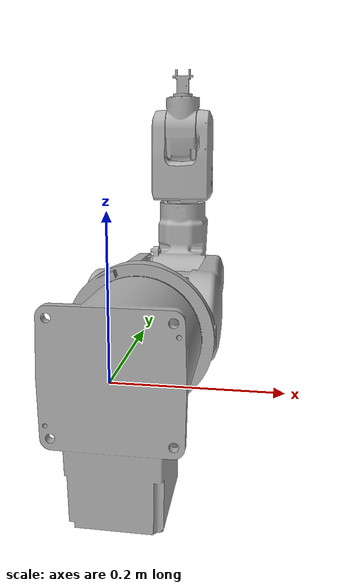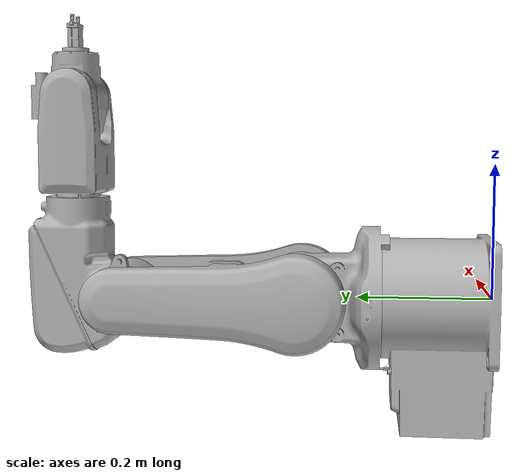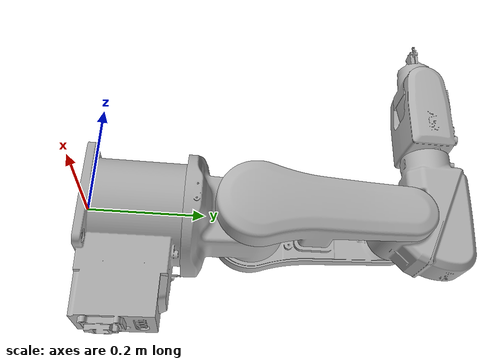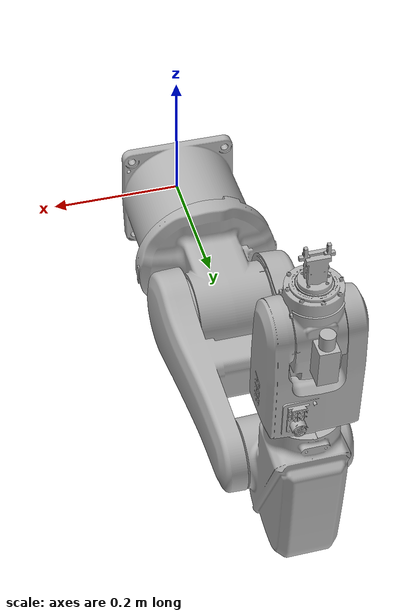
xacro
<?xml version="1.0" ?>
<robot name="abb" xmlns:xacro="http://www.ros.org/wiki/xacro">

<xacro:include filename="materials.xacro" />
<xacro:include filename="abb.trans" />
<xacro:include filename="abb.gazebo" />
<link name="base_link">
  <inertial>
    <origin xyz="8.012829465790817e-05 0.0796373967366606 -0.04203909918692455" rpy="0 0 0"/>
    <mass value="48.78806525610532"/>
    <inertia ixx="0.38566" iyy="0.370816" izz="0.194109" ixy="6.3e-05" iyz="-0.010275" ixz="0.000634"/>
  </inertial>
  <visual>
    <origin xyz="0 0 0" rpy="0 0 0"/>
    <geometry>
      <mesh filename="package://meshes/base_link.stl" scale="0.001 0.001 0.001"/>
    </geometry>
    <material name="silver"/>
  </visual>
  <collision>
    <origin xyz="0 0 0" rpy="0 0 0"/>
    <geometry>
      <mesh filename="package://meshes/base_link.stl" scale="0.001 0.001 0.001"/>
    </geometry>
  </collision>
</link>

<link name="link_one_1">
  <inertial>
    <origin xyz="-0.00011916443999746602 0.07041182603856488 9.765534797940541e-05" rpy="0 0 0"/>
    <mass value="24.076192117313017"/>
    <inertia ixx="0.113074" iyy="0.082059" izz="0.11161" ixy="-0.000152" iyz="0.000182" ixz="0.000101"/>
  </inertial>
  <visual>
    <origin xyz="-0.0 -0.166 -0.0" rpy="0 0 0"/>
    <geometry>
      <mesh filename="package://meshes/link_one_1.stl" scale="0.001 0.001 0.001"/>
    </geometry>
    <material name="silver"/>
  </visual>
  <collision>
    <origin xyz="-0.0 -0.166 -0.0" rpy="0 0 0"/>
    <geometry>
      <mesh filename="package://meshes/link_one_1.stl" scale="0.001 0.001 0.001"/>
    </geometry>
  </collision>
</link>

<link name="link_two_1">
  <inertial>
    <origin xyz="-0.061616888272031205 0.10124228312538341 0.0007963464296757136" rpy="0 0 0"/>
    <mass value="30.683386891011434"/>
    <inertia ixx="0.326327" iyy="0.20375" izz="0.473455" ixy="0.003964" iyz="-0.000476" ixz="-5.8e-05"/>
  </inertial>
  <visual>
    <origin xyz="-0.0595 -0.288 8e-06" rpy="0 0 0"/>
    <geometry>
      <mesh filename="package://meshes/link_two_1.stl" scale="0.001 0.001 0.001"/>
    </geometry>
    <material name="silver"/>
  </visual>
  <collision>
    <origin xyz="-0.0595 -0.288 8e-06" rpy="0 0 0"/>
    <geometry>
      <mesh filename="package://meshes/link_two_1.stl" scale="0.001 0.001 0.001"/>
    </geometry>
  </collision>
</link>

<link name="link_three_1">
  <inertial>
    <origin xyz="0.0510673727268393 0.057896173438662824 0.022837283940879072" rpy="0 0 0"/>
    <mass value="23.108195954813556"/>
    <inertia ixx="0.131196" iyy="0.099697" izz="0.06558" ixy="0.001429" iyz="-0.011195" ixz="0.000621"/>
  </inertial>
  <visual>
    <origin xyz="0.05 -0.558 -3.3e-05" rpy="0 0 0"/>
    <geometry>
      <mesh filename="package://meshes/link_three_1.stl" scale="0.001 0.001 0.001"/>
    </geometry>
    <material name="silver"/>
  </visual>
  <collision>
    <origin xyz="0.05 -0.558 -3.3e-05" rpy="0 0 0"/>
    <geometry>
      <mesh filename="package://meshes/link_three_1.stl" scale="0.001 0.001 0.001"/>
    </geometry>
  </collision>
</link>

<link name="link_four_1">
  <inertial>
    <origin xyz="0.0002437766059516598 0.00035432075163799315 0.07512904879023294" rpy="0 0 0"/>
    <mass value="10.410422726556684"/>
    <inertia ixx="0.031498" iyy="0.041181" izz="0.022294" ixy="-9.8e-05" iyz="0.00014" ixz="0.000182"/>
  </inertial>
  <visual>
    <origin xyz="-2e-05 -0.627905 -0.14967" rpy="0 0 0"/>
    <geometry>
      <mesh filename="package://meshes/link_four_1.stl" scale="0.001 0.001 0.001"/>
    </geometry>
    <material name="silver"/>
  </visual>
  <collision>
    <origin xyz="-2e-05 -0.627905 -0.14967" rpy="0 0 0"/>
    <geometry>
      <mesh filename="package://meshes/link_four_1.stl" scale="0.001 0.001 0.001"/>
    </geometry>
  </collision>
</link>

<link name="link_five_1">
  <inertial>
    <origin xyz="0.031037091987359884 3.887912818956174e-05 -0.0011008963670425809" rpy="0 0 0"/>
    <mass value="4.291162754920929"/>
    <inertia ixx="0.00701" iyy="0.006402" izz="0.003179" ixy="-0.0" iyz="-8e-06" ixz="-1.3e-05"/>
  </inertial>
  <visual>
    <origin xyz="0.03096 -0.627832 -0.302075" rpy="0 0 0"/>
    <geometry>
      <mesh filename="package://meshes/link_five_1.stl" scale="0.001 0.001 0.001"/>
    </geometry>
    <material name="silver"/>
  </visual>
  <collision>
    <origin xyz="0.03096 -0.627832 -0.302075" rpy="0 0 0"/>
    <geometry>
      <mesh filename="package://meshes/link_five_1.stl" scale="0.001 0.001 0.001"/>
    </geometry>
  </collision>
</link>

<link name="link_six_1">
  <inertial>
    <origin xyz="0.0001704327498104366 -3.440002126486874e-07 0.005938287091732386" rpy="0 0 0"/>
    <mass value="0.10737560006286881"/>
    <inertia ixx="1.3e-05" iyy="1.3e-05" izz="2.3e-05" ixy="-0.0" iyz="0.0" ixz="-0.0"/>
  </inertial>
  <visual>
    <origin xyz="-4.8e-05 -0.627831 -0.36107" rpy="0 0 0"/>
    <geometry>
      <mesh filename="package://meshes/link_six_1.stl" scale="0.001 0.001 0.001"/>
    </geometry>
    <material name="silver"/>
  </visual>
  <collision>
    <origin xyz="-4.8e-05 -0.627831 -0.36107" rpy="0 0 0"/>
    <geometry>
      <mesh filename="package://meshes/link_six_1.stl" scale="0.001 0.001 0.001"/>
    </geometry>
  </collision>
</link>

<link name="left_gripper_1">
  <inertial>
    <origin xyz="-0.6134605599811394 0.0001383187190899804 -0.3982785134737753" rpy="0 0 0"/>
    <mass value="0.0035451260308642795"/>
    <inertia ixx="0.0" iyy="0.0" izz="0.0" ixy="0.0" iyz="-0.0" ixz="0.0"/>
  </inertial>
  <visual>
    <origin xyz="-0.627956 -0.627706 -0.810557" rpy="0 0 0"/>
    <geometry>
      <mesh filename="package://meshes/left_gripper_1.stl" scale="0.001 0.001 0.001"/>
    </geometry>
    <material name="silver"/>
  </visual>
  <collision>
    <origin xyz="-0.627956 -0.627706 -0.810557" rpy="0 0 0"/>
    <geometry>
      <mesh filename="package://meshes/left_gripper_1.stl" scale="0.001 0.001 0.001"/>
    </geometry>
  </collision>
</link>

<link name="right_gripper_1">
  <inertial>
    <origin xyz="-0.6423416065798675 0.0001492846021573513 -0.3982746545264991" rpy="0 0 0"/>
    <mass value="0.0035451260306269467"/>
    <inertia ixx="0.0" iyy="0.0" izz="0.0" ixy="0.0" iyz="-0.0" ixz="-0.0"/>
  </inertial>
  <visual>
    <origin xyz="-0.627956 -0.627706 -0.810557" rpy="0 0 0"/>
    <geometry>
      <mesh filename="package://meshes/right_gripper_1.stl" scale="0.001 0.001 0.001"/>
    </geometry>
    <material name="silver"/>
  </visual>
  <collision>
    <origin xyz="-0.627956 -0.627706 -0.810557" rpy="0 0 0"/>
    <geometry>
      <mesh filename="package://meshes/right_gripper_1.stl" scale="0.001 0.001 0.001"/>
    </geometry>
  </collision>
</link>

<link name="camera_1">
  <inertial>
    <origin xyz="9.342563472479823e-06 0.01270209988539206 0.004959021796750063" rpy="0 0 0"/>
    <mass value="0.2998999503460273"/>
    <inertia ixx="0.000116" iyy="0.000116" izz="3e-05" ixy="-0.0" iyz="-0.0" ixz="-0.0"/>
  </inertial>
  <visual>
    <origin xyz="-7e-05 -0.668805 -0.293055" rpy="0 0 0"/>
    <geometry>
      <mesh filename="package://meshes/camera_1.stl" scale="0.001 0.001 0.001"/>
    </geometry>
    <material name="silver"/>
  </visual>
  <collision>
    <origin xyz="-7e-05 -0.668805 -0.293055" rpy="0 0 0"/>
    <geometry>
      <mesh filename="package://meshes/camera_1.stl" scale="0.001 0.001 0.001"/>
    </geometry>
  </collision>
</link>

<link name="ef_body_1">
  <inertial>
    <origin xyz="6.411121603684631e-06 1.1494758027863483e-05 0.020963560953154603" rpy="0 0 0"/>
    <mass value="0.10781653983510255"/>
    <inertia ixx="2e-05" iyy="2.2e-05" izz="7e-06" ixy="0.0" iyz="-0.0" ixz="0.0"/>
  </inertial>
  <visual>
    <origin xyz="-4.9e-05 -0.627833 -0.36807" rpy="0 0 0"/>
    <geometry>
      <mesh filename="package://meshes/ef_body_1.stl" scale="0.001 0.001 0.001"/>
    </geometry>
    <material name="silver"/>
  </visual>
  <collision>
    <origin xyz="-4.9e-05 -0.627833 -0.36807" rpy="0 0 0"/>
    <geometry>
      <mesh filename="package://meshes/ef_body_1.stl" scale="0.001 0.001 0.001"/>
    </geometry>
  </collision>
</link>

<joint name="Revolute 1" type="continuous">
  <origin xyz="0.0 0.166 0.0" rpy="0 0 0"/>
  <parent link="base_link"/>
  <child link="link_one_1"/>
  <axis xyz="-0.0 -1.0 -0.0"/>
</joint>

<joint name="Revolute 2" type="continuous">
  <origin xyz="0.0595 0.122 -8e-06" rpy="0 0 0"/>
  <parent link="link_one_1"/>
  <child link="link_two_1"/>
  <axis xyz="-1.0 0.0 0.000133"/>
</joint>

<joint name="Revolute 3" type="continuous">
  <origin xyz="-0.1095 0.27 4.1e-05" rpy="0 0 0"/>
  <parent link="link_two_1"/>
  <child link="link_three_1"/>
  <axis xyz="-1.0 0.0 0.000133"/>
</joint>

<joint name="Revolute 4" type="continuous">
  <origin xyz="0.05002 0.069905 0.149637" rpy="0 0 0"/>
  <parent link="link_three_1"/>
  <child link="link_four_1"/>
  <axis xyz="0.000133 -0.000634 1.0"/>
</joint>

<joint name="Revolute 5" type="continuous">
  <origin xyz="-0.03098 -7.3e-05 0.152405" rpy="0 0 0"/>
  <parent link="link_four_1"/>
  <child link="link_five_1"/>
  <axis xyz="1.0 -0.000752 -0.000133"/>
</joint>

<joint name="Revolute 6" type="continuous">
  <origin xyz="0.031008 -1e-06 0.058995" rpy="0 0 0"/>
  <parent link="link_five_1"/>
  <child link="link_six_1"/>
  <axis xyz="0.000134 0.000374 1.0"/>
</joint>

<joint name="Rigid 8" type="fixed">
  <origin xyz="0.627907 -0.000127 0.442487" rpy="0 0 0"/>
  <parent link="ef_body_1"/>
  <child link="left_gripper_1"/>
</joint>

<joint name="Rigid 9" type="fixed">
  <origin xyz="0.627907 -0.000127 0.442487" rpy="0 0 0"/>
  <parent link="ef_body_1"/>
  <child link="right_gripper_1"/>
</joint>

<joint name="Rigid 10" type="fixed">
  <origin xyz="0.03103 0.040973 -0.00902" rpy="0 0 0"/>
  <parent link="link_five_1"/>
  <child link="camera_1"/>
</joint>

<joint name="Rigid 11" type="fixed">
  <origin xyz="1e-06 2e-06 0.007" rpy="0 0 0"/>
  <parent link="link_six_1"/>
  <child link="ef_body_1"/>
</joint>

</robot>

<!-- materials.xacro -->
<robot name="abb" xmlns:xacro="http://www.ros.org/wiki/xacro" >

<material name="silver">
  <color rgba="0.700 0.700 0.700 1.000"/>
</material>

</robot>

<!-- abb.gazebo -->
<robot name="abb" xmlns:xacro="http://www.ros.org/wiki/xacro" >

<xacro:property name="body_color" value="Gazebo/Silver" />

<gazebo>
  <plugin name="control" filename="libgazebo_ros_control.so"/>
</gazebo>
<gazebo reference="base_link">
  <material>${body_color}</material>
  <mu1>0.2</mu1>
  <mu2>0.2</mu2>
  <self_collide>true</self_collide>
  <gravity>true</gravity>
</gazebo>

<gazebo reference="link_one_1">
  <material>${body_color}</material>
  <mu1>0.2</mu1>
  <mu2>0.2</mu2>
  <self_collide>true</self_collide>
</gazebo>

<gazebo reference="link_two_1">
  <material>${body_color}</material>
  <mu1>0.2</mu1>
  <mu2>0.2</mu2>
  <self_collide>true</self_collide>
</gazebo>

<gazebo reference="link_three_1">
  <material>${body_color}</material>
  <mu1>0.2</mu1>
  <mu2>0.2</mu2>
  <self_collide>true</self_collide>
</gazebo>

<gazebo reference="link_four_1">
  <material>${body_color}</material>
  <mu1>0.2</mu1>
  <mu2>0.2</mu2>
  <self_collide>true</self_collide>
</gazebo>

<gazebo reference="link_five_1">
  <material>${body_color}</material>
  <mu1>0.2</mu1>
  <mu2>0.2</mu2>
  <self_collide>true</self_collide>
</gazebo>

<gazebo reference="link_six_1">
  <material>${body_color}</material>
  <mu1>0.2</mu1>
  <mu2>0.2</mu2>
  <self_collide>true</self_collide>
</gazebo>

<gazebo reference="left_gripper_1">
  <material>${body_color}</material>
  <mu1>0.2</mu1>
  <mu2>0.2</mu2>
  <self_collide>true</self_collide>
</gazebo>

<gazebo reference="right_gripper_1">
  <material>${body_color}</material>
  <mu1>0.2</mu1>
  <mu2>0.2</mu2>
  <self_collide>true</self_collide>
</gazebo>

<gazebo reference="camera_1">
  <material>${body_color}</material>
  <mu1>0.2</mu1>
  <mu2>0.2</mu2>
  <self_collide>true</self_collide>
</gazebo>

<gazebo reference="ef_body_1">
  <material>${body_color}</material>
  <mu1>0.2</mu1>
  <mu2>0.2</mu2>
  <self_collide>true</self_collide>
</gazebo>

</robot>
